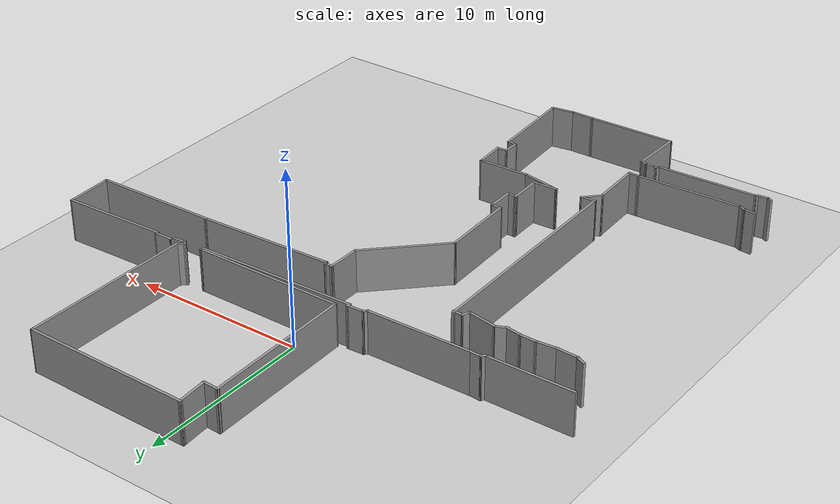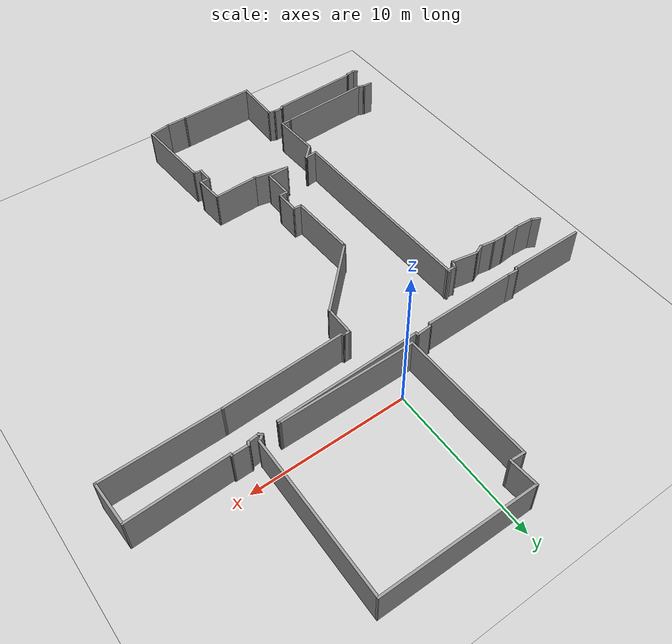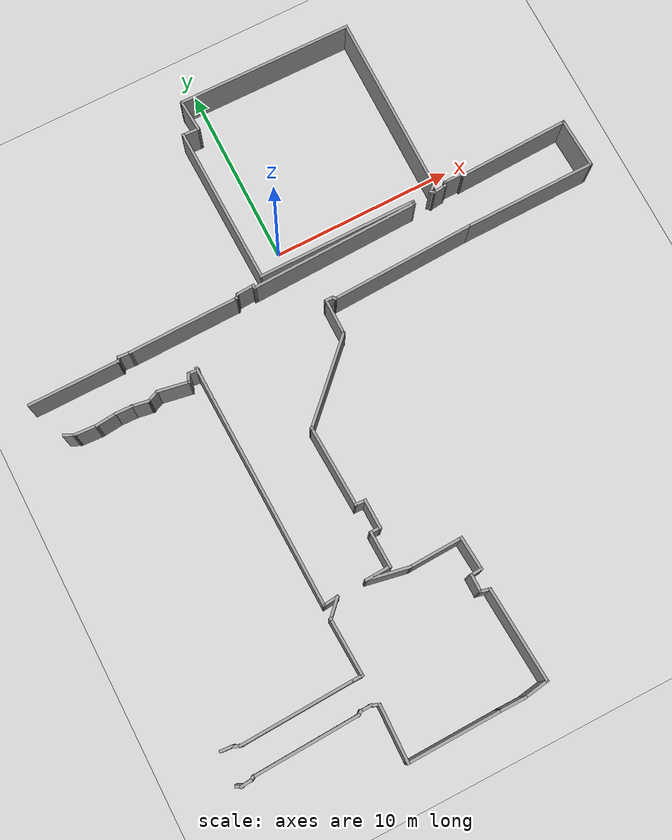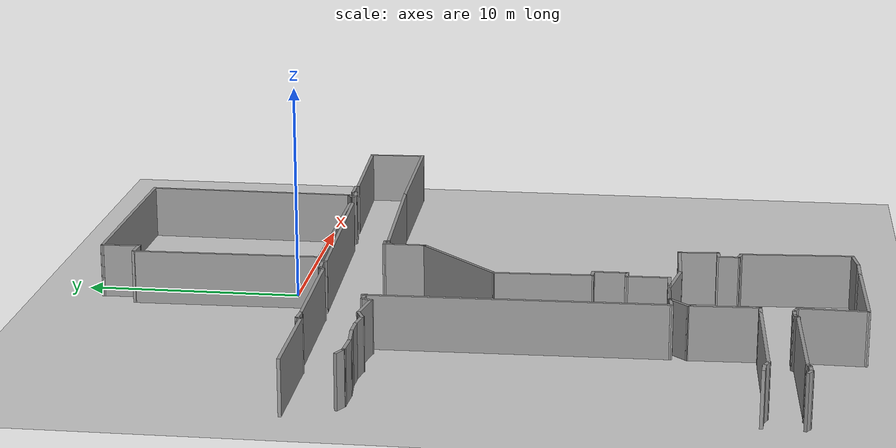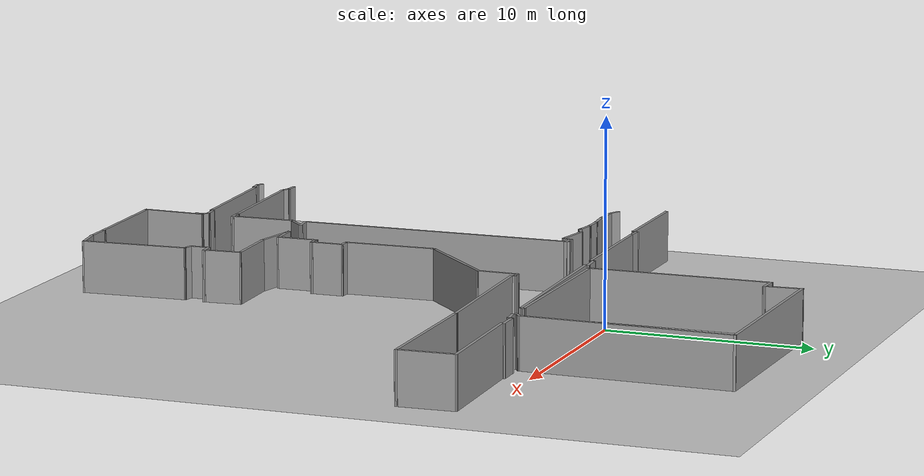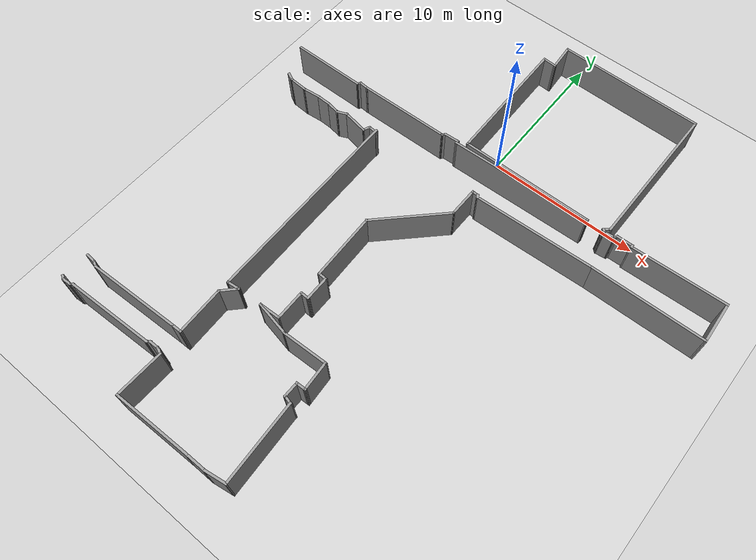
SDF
<sdf version="1.7">
 <world name="default">
  <model name="ground_plane">
   <static>1</static>
   <link name="link">
    <collision name="collision">
     <geometry><plane><normal>0 0 1</normal><size>100 100</size></plane></geometry>
     <surface>
      <contact><collide_bitmask>65535</collide_bitmask></contact>
      <friction><ode><mu>100</mu><mu2>50</mu2></ode></friction>
     </surface>
    </collision>
    <visual name="visual">
     <cast_shadows>0</cast_shadows>
     <geometry><plane><normal>0 0 1</normal><size>100 100</size></plane></geometry>
     <material>
      <script><uri>file://media/materials/scripts/gazebo.material</uri><name>Gazebo/Grey</name></script>
     </material>
    </visual>
   </link>
  </model>
  <model name="EnvDC_1stfloor">
   <pose>-14.254 -7.77363 0 0 0 -0.048671</pose>
   <link name="Wall_0">
    <collision name="Wall_0_Collision">
     <geometry><box><size>1 0.15 2.5</size></box></geometry>
     <pose>0 0 1.25 0 -0 0</pose>
    </collision>
    <visual name="Wall_0_Visual">
     <pose>0 0 1.25 0 -0 0</pose>
     <geometry><box><size>1 0.15 2.5</size></box></geometry>
     <material>
      <script><uri>file://media/materials/scripts/gazebo.material</uri><name>Gazebo/Grey</name></script>
      <ambient>1 1 1 1</ambient>
     </material>
     <meta><layer>0</layer></meta>
    </visual>
    <pose>12.1528 15.725 0 0 -0 0</pose>
   </link>
   <link name="Wall_1">
    <collision name="Wall_1_Collision">
     <geometry><box><size>1.87529 0.15 2.5</size></box></geometry>
     <pose>0 0 1.25 0 -0 0</pose>
    </collision>
    <visual name="Wall_1_Visual">
     <pose>0 0 1.25 0 -0 0</pose>
     <geometry><box><size>1.87529 0.15 2.5</size></box></geometry>
     <material>
      <script><uri>file://media/materials/scripts/gazebo.material</uri><name>Gazebo/Grey</name></script>
      <ambient>1 1 1 1</ambient>
     </material>
     <meta><layer>0</layer></meta>
    </visual>
    <pose>12.4735 16.5813 0 0 -0 1.69199</pose>
   </link>
   <link name="Wall_10">
    <collision name="Wall_10_Collision">
     <geometry><box><size>0.255426 0.15 2.5</size></box></geometry>
     <pose>0 0 1.25 0 -0 0</pose>
    </collision>
    <visual name="Wall_10_Visual">
     <pose>0 0 1.25 0 -0 0</pose>
     <geometry><box><size>0.255426 0.15 2.5</size></box></geometry>
     <material>
      <script><uri>file://media/materials/scripts/gazebo.material</uri><name>Gazebo/Grey</name></script>
      <ambient>1 1 1 1</ambient>
     </material>
     <meta><layer>0</layer></meta>
    </visual>
    <pose>24.0145 7.75655 0 0 -0 -1.35213</pose>
   </link>
   <link name="Wall_100">
    <collision name="Wall_100_Collision">
     <geometry><box><size>0.755861 0.15 2.5</size></box></geometry>
     <pose>0 0 1.25 0 -0 0</pose>
    </collision>
    <visual name="Wall_100_Visual">
     <pose>0 0 1.25 0 -0 0</pose>
     <geometry><box><size>0.755861 0.15 2.5</size></box></geometry>
     <material>
      <script><uri>file://media/materials/scripts/gazebo.material</uri><name>Gazebo/Grey</name></script>
      <ambient>1 1 1 1</ambient>
     </material>
     <meta><layer>0</layer></meta>
    </visual>
    <pose>8.31616 -13.2267 0 0 -0 -3.07717</pose>
   </link>
   <link name="Wall_101">
    <collision name="Wall_101_Collision">
     <geometry><box><size>6.22065 0.15 2.5</size></box></geometry>
     <pose>0 0 1.25 0 -0 0</pose>
    </collision>
    <visual name="Wall_101_Visual">
     <pose>0 0 1.25 0 -0 0</pose>
     <geometry><box><size>6.22065 0.15 2.5</size></box></geometry>
     <material>
      <script><uri>file://media/materials/scripts/gazebo.material</uri><name>Gazebo/Grey</name></script>
      <ambient>1 1 1 1</ambient>
     </material>
     <meta><layer>0</layer></meta>
    </visual>
    <pose>4.99084 -13.5192 0 0 -0 -3.05152</pose>
   </link>
   <link name="Wall_102">
    <collision name="Wall_102_Collision">
     <geometry><box><size>0.544913 0.15 2.5</size></box></geometry>
     <pose>0 0 1.25 0 -0 0</pose>
    </collision>
    <visual name="Wall_102_Visual">
     <pose>0 0 1.25 0 -0 0</pose>
     <geometry><box><size>0.544913 0.15 2.5</size></box></geometry>
     <material>
      <script><uri>file://media/materials/scripts/gazebo.material</uri><name>Gazebo/Grey</name></script>
      <ambient>1 1 1 1</ambient>
     </material>
     <meta><layer>0</layer></meta>
    </visual>
    <pose>1.78254 -13.724 0 0 -0 2.7886</pose>
   </link>
   <link name="Wall_103">
    <collision name="Wall_103_Collision">
     <geometry><box><size>0.715933 0.15 2.5</size></box></geometry>
     <pose>0 0 1.25 0 -0 0</pose>
    </collision>
    <visual name="Wall_103_Visual">
     <pose>0 0 1.25 0 -0 0</pose>
     <geometry><box><size>0.715933 0.15 2.5</size></box></geometry>
     <material>
      <script><uri>file://media/materials/scripts/gazebo.material</uri><name>Gazebo/Grey</name></script>
      <ambient>1 1 1 1</ambient>
     </material>
     <meta><layer>0</layer></meta>
    </visual>
    <pose>1.31446 -13.646 0 0 -0 3.10712</pose>
   </link>
   <link name="Wall_11">
    <collision name="Wall_11_Collision">
     <geometry><box><size>6.22574 0.15 2.5</size></box></geometry>
     <pose>0 0 1.25 0 -0 0</pose>
    </collision>
    <visual name="Wall_11_Visual">
     <pose>0 0 1.25 0 -0 0</pose>
     <geometry><box><size>6.22574 0.15 2.5</size></box></geometry>
     <material>
      <script><uri>file://media/materials/scripts/gazebo.material</uri><name>Gazebo/Grey</name></script>
      <ambient>1 1 1 1</ambient>
     </material>
     <meta><layer>0</layer></meta>
    </visual>
    <pose>27.0534 7.95666 0 0 -0 0.082907</pose>
   </link>
   <link name="Wall_12">
    <collision name="Wall_12_Collision">
     <geometry><box><size>2.83708 0.15 2.5</size></box></geometry>
     <pose>0 0 1.25 0 -0 0</pose>
    </collision>
    <visual name="Wall_12_Visual">
     <pose>0 0 1.25 0 -0 0</pose>
     <geometry><box><size>2.83708 0.15 2.5</size></box></geometry>
     <material>
      <script><uri>file://media/materials/scripts/gazebo.material</uri><name>Gazebo/Grey</name></script>
      <ambient>1 1 1 1</ambient>
     </material>
     <meta><layer>0</layer></meta>
    </visual>
    <pose>30.2037 6.87033 0 0 -0 -1.47917</pose>
   </link>
   <link name="Wall_14">
    <collision name="Wall_14_Collision">
     <geometry><box><size>7.39108 0.15 2.5</size></box></geometry>
     <pose>0 0 1.25 0 -0 0</pose>
    </collision>
    <visual name="Wall_14_Visual">
     <pose>0 0 1.25 0 -0 0</pose>
     <geometry><box><size>7.39108 0.15 2.5</size></box></geometry>
     <material>
      <script><uri>file://media/materials/scripts/gazebo.material</uri><name>Gazebo/Grey</name></script>
      <ambient>1 1 1 1</ambient>
     </material>
     <meta><layer>0</layer></meta>
    </visual>
    <pose>26.713 5.30981 0 0 -0 -3.08007</pose>
   </link>
   <link name="Wall_16">
    <collision name="Wall_16_Collision">
     <geometry><box><size>8.02507 0.15 2.5</size></box></geometry>
     <pose>0 0 1.25 0 -0 0</pose>
    </collision>
    <visual name="Wall_16_Visual">
     <pose>0 0 1.25 0 -0 0</pose>
     <geometry><box><size>8.02507 0.15 2.5</size></box></geometry>
     <material>
      <script><uri>file://media/materials/scripts/gazebo.material</uri><name>Gazebo/Grey</name></script>
      <ambient>1 1 1 1</ambient>
     </material>
     <meta><layer>0</layer></meta>
    </visual>
    <pose>19.1772 4.73871 0 0 -0 -3.05297</pose>
   </link>
   <link name="Wall_163">
    <collision name="Wall_163_Collision">
     <geometry><box><size>0.666637 0.15 2.5</size></box></geometry>
     <pose>0 0 1.25 0 -0 0</pose>
    </collision>
    <visual name="Wall_163_Visual">
     <pose>0 0 1.25 0 -0 0</pose>
     <geometry><box><size>0.666637 0.15 2.5</size></box></geometry>
     <material>
      <script><uri>file://media/materials/scripts/gazebo.material</uri><name>Gazebo/Grey</name></script>
      <ambient>1 1 1 1</ambient>
     </material>
     <meta><layer>0</layer></meta>
    </visual>
    <pose>0.283044 3.444 0 0 -0 -0.404892</pose>
   </link>
   <link name="Wall_164">
    <collision name="Wall_164_Collision">
     <geometry><box><size>1.32591 0.15 2.5</size></box></geometry>
     <pose>0 0 1.25 0 -0 0</pose>
    </collision>
    <visual name="Wall_164_Visual">
     <pose>0 0 1.25 0 -0 0</pose>
     <geometry><box><size>1.32591 0.15 2.5</size></box></geometry>
     <material>
      <script><uri>file://media/materials/scripts/gazebo.material</uri><name>Gazebo/Grey</name></script>
      <ambient>1 1 1 1</ambient>
     </material>
     <meta><layer>0</layer></meta>
    </visual>
    <pose>1.1084 3.33659 0 0 -0 -0.009615</pose>
   </link>
   <link name="Wall_165">
    <collision name="Wall_165_Collision">
     <geometry><box><size>1.25807 0.15 2.5</size></box></geometry>
     <pose>0 0 1.25 0 -0 0</pose>
    </collision>
    <visual name="Wall_165_Visual">
     <pose>0 0 1.25 0 -0 0</pose>
     <geometry><box><size>1.25807 0.15 2.5</size></box></geometry>
     <material>
      <script><uri>file://media/materials/scripts/gazebo.material</uri><name>Gazebo/Grey</name></script>
      <ambient>1 1 1 1</ambient>
     </material>
     <meta><layer>0</layer></meta>
    </visual>
    <pose>2.24469 3.41009 0 0 -0 0.14334</pose>
   </link>
   <link name="Wall_166">
    <collision name="Wall_166_Collision">
     <geometry><box><size>1.04384 0.15 2.5</size></box></geometry>
     <pose>0 0 1.25 0 -0 0</pose>
    </collision>
    <visual name="Wall_166_Visual">
     <pose>0 0 1.25 0 -0 0</pose>
     <geometry><box><size>1.04384 0.15 2.5</size></box></geometry>
     <material>
      <script><uri>file://media/materials/scripts/gazebo.material</uri><name>Gazebo/Grey</name></script>
      <ambient>1 1 1 1</ambient>
     </material>
     <meta><layer>0</layer></meta>
    </visual>
    <pose>3.23964 3.50054 0 0 -0 0.025311</pose>
   </link>
   <link name="Wall_167">
    <collision name="Wall_167_Collision">
     <geometry><box><size>1.02651 0.15 2.5</size></box></geometry>
     <pose>0 0 1.25 0 -0 0</pose>
    </collision>
    <visual name="Wall_167_Visual">
     <pose>0 0 1.25 0 -0 0</pose>
     <geometry><box><size>1.02651 0.15 2.5</size></box></geometry>
     <material>
      <script><uri>file://media/materials/scripts/gazebo.material</uri><name>Gazebo/Grey</name></script>
      <ambient>1 1 1 1</ambient>
     </material>
     <meta><layer>0</layer></meta>
    </visual>
    <pose>4.12153 3.46096 0 0 -0 -0.116355</pose>
   </link>
   <link name="Wall_168">
    <collision name="Wall_168_Collision">
     <geometry><box><size>0.777066 0.15 2.5</size></box></geometry>
     <pose>0 0 1.25 0 -0 0</pose>
    </collision>
    <visual name="Wall_168_Visual">
     <pose>0 0 1.25 0 -0 0</pose>
     <geometry><box><size>0.777066 0.15 2.5</size></box></geometry>
     <material>
      <script><uri>file://media/materials/scripts/gazebo.material</uri><name>Gazebo/Grey</name></script>
      <ambient>1 1 1 1</ambient>
     </material>
     <meta><layer>0</layer></meta>
    </visual>
    <pose>4.83948 3.54576 0 0 -0 0.44752</pose>
   </link>
   <link name="Wall_169">
    <collision name="Wall_169_Collision">
     <geometry><box><size>1.802 0.15 2.5</size></box></geometry>
     <pose>0 0 1.25 0 -0 0</pose>
    </collision>
    <visual name="Wall_169_Visual">
     <pose>0 0 1.25 0 -0 0</pose>
     <geometry><box><size>1.802 0.15 2.5</size></box></geometry>
     <material>
      <script><uri>file://media/materials/scripts/gazebo.material</uri><name>Gazebo/Grey</name></script>
      <ambient>1 1 1 1</ambient>
     </material>
     <meta><layer>0</layer></meta>
    </visual>
    <pose>5.94184 3.57968 0 0 -0 -0.123506</pose>
   </link>
   <link name="Wall_17">
    <collision name="Wall_17_Collision">
     <geometry><box><size>0.304061 0.15 2.5</size></box></geometry>
     <pose>0 0 1.25 0 -0 0</pose>
    </collision>
    <visual name="Wall_17_Visual">
     <pose>0 0 1.25 0 -0 0</pose>
     <geometry><box><size>0.304061 0.15 2.5</size></box></geometry>
     <material>
      <script><uri>file://media/materials/scripts/gazebo.material</uri><name>Gazebo/Grey</name></script>
      <ambient>1 1 1 1</ambient>
     </material>
     <meta><layer>0</layer></meta>
    </visual>
    <pose>15.2058 4.4494 0 0 -0 2.26553</pose>
   </link>
   <link name="Wall_170">
    <collision name="Wall_170_Collision">
     <geometry><box><size>0.582752 0.15 2.5</size></box></geometry>
     <pose>0 0 1.25 0 -0 0</pose>
    </collision>
    <visual name="Wall_170_Visual">
     <pose>0 0 1.25 0 -0 0</pose>
     <geometry><box><size>0.582752 0.15 2.5</size></box></geometry>
     <material>
      <script><uri>file://media/materials/scripts/gazebo.material</uri><name>Gazebo/Grey</name></script>
      <ambient>1 1 1 1</ambient>
     </material>
     <meta><layer>0</layer></meta>
    </visual>
    <pose>6.83504 3.68144 0 0 -0 1.22426</pose>
   </link>
   <link name="Wall_171">
    <collision name="Wall_171_Collision">
     <geometry><box><size>0.681877 0.15 2.5</size></box></geometry>
     <pose>0 0 1.25 0 -0 0</pose>
    </collision>
    <visual name="Wall_171_Visual">
     <pose>0 0 1.25 0 -0 0</pose>
     <geometry><box><size>0.681877 0.15 2.5</size></box></geometry>
     <material>
      <script><uri>file://media/materials/scripts/gazebo.material</uri><name>Gazebo/Grey</name></script>
      <ambient>1 1 1 1</ambient>
     </material>
     <meta><layer>0</layer></meta>
    </visual>
    <pose>7.17423 3.87364 0 0 -0 -0.042528</pose>
   </link>
   <link name="Wall_18">
    <collision name="Wall_18_Collision">
     <geometry><box><size>0.518444 0.15 2.5</size></box></geometry>
     <pose>0 0 1.25 0 -0 0</pose>
    </collision>
    <visual name="Wall_18_Visual">
     <pose>0 0 1.25 0 -0 0</pose>
     <geometry><box><size>0.518444 0.15 2.5</size></box></geometry>
     <material>
      <script><uri>file://media/materials/scripts/gazebo.material</uri><name>Gazebo/Grey</name></script>
      <ambient>1 1 1 1</ambient>
     </material>
     <meta><layer>0</layer></meta>
    </visual>
    <pose>14.9724 4.502 0 0 -0 -3.10589</pose>
   </link>
   <link name="Wall_19">
    <collision name="Wall_19_Collision">
     <geometry><box><size>2.05935 0.15 2.5</size></box></geometry>
     <pose>0 0 1.25 0 -0 0</pose>
    </collision>
    <visual name="Wall_19_Visual">
     <pose>0 0 1.25 0 -0 0</pose>
     <geometry><box><size>2.05935 0.15 2.5</size></box></geometry>
     <material>
      <script><uri>file://media/materials/scripts/gazebo.material</uri><name>Gazebo/Grey</name></script>
      <ambient>1 1 1 1</ambient>
     </material>
     <meta><layer>0</layer></meta>
    </visual>
    <pose>14.831 3.54203 0 0 -0 -1.526</pose>
   </link>
   <link name="Wall_2">
    <collision name="Wall_2_Collision">
     <geometry><box><size>9.80526 0.15 2.5</size></box></geometry>
     <pose>0 0 1.25 0 -0 0</pose>
    </collision>
    <visual name="Wall_2_Visual">
     <pose>0 0 1.25 0 -0 0</pose>
     <geometry><box><size>9.80526 0.15 2.5</size></box></geometry>
     <material>
      <script><uri>file://media/materials/scripts/gazebo.material</uri><name>Gazebo/Grey</name></script>
      <ambient>1 1 1 1</ambient>
     </material>
     <meta><layer>0</layer></meta>
    </visual>
    <pose>17.193 17.6228 0 0 -0 0.038364</pose>
   </link>
   <link name="Wall_21">
    <collision name="Wall_21_Collision">
     <geometry><box><size>5.30741 0.15 2.5</size></box></geometry>
     <pose>0 0 1.25 0 -0 0</pose>
    </collision>
    <visual name="Wall_21_Visual">
     <pose>0 0 1.25 0 -0 0</pose>
     <geometry><box><size>5.30741 0.15 2.5</size></box></geometry>
     <material>
      <script><uri>file://media/materials/scripts/gazebo.material</uri><name>Gazebo/Grey</name></script>
      <ambient>1 1 1 1</ambient>
     </material>
     <meta><layer>0</layer></meta>
    </visual>
    <pose>13.1327 0.686426 0 0 -0 -2.312</pose>
   </link>
   <link name="Wall_23">
    <collision name="Wall_23_Collision">
     <geometry><box><size>4.54645 0.15 2.5</size></box></geometry>
     <pose>0 0 1.25 0 -0 0</pose>
    </collision>
    <visual name="Wall_23_Visual">
     <pose>0 0 1.25 0 -0 0</pose>
     <geometry><box><size>4.54645 0.15 2.5</size></box></geometry>
     <material>
      <script><uri>file://media/materials/scripts/gazebo.material</uri><name>Gazebo/Grey</name></script>
      <ambient>1 1 1 1</ambient>
     </material>
     <meta><layer>0</layer></meta>
    </visual>
    <pose>11.5866 -3.40578 0 0 -0 -1.48199</pose>
   </link>
   <link name="Wall_24">
    <collision name="Wall_24_Collision">
     <geometry><box><size>0.66 0.15 2.5</size></box></geometry>
     <pose>0 0 1.25 0 -0 0</pose>
    </collision>
    <visual name="Wall_24_Visual">
     <pose>0 0 1.25 0 -0 0</pose>
     <geometry><box><size>0.66 0.15 2.5</size></box></geometry>
     <material>
      <script><uri>file://media/materials/scripts/gazebo.material</uri><name>Gazebo/Grey</name></script>
      <ambient>1 1 1 1</ambient>
     </material>
     <meta><layer>0</layer></meta>
    </visual>
    <pose>12.0366 -5.59578 0 0 -0 0</pose>
   </link>
   <link name="Wall_25">
    <collision name="Wall_25_Collision">
     <geometry><box><size>1.67329 0.15 2.5</size></box></geometry>
     <pose>0 0 1.25 0 -0 0</pose>
    </collision>
    <visual name="Wall_25_Visual">
     <pose>0 0 1.25 0 -0 0</pose>
     <geometry><box><size>1.67329 0.15 2.5</size></box></geometry>
     <material>
      <script><uri>file://media/materials/scripts/gazebo.material</uri><name>Gazebo/Grey</name></script>
      <ambient>1 1 1 1</ambient>
     </material>
     <meta><layer>0</layer></meta>
    </visual>
    <pose>12.3416 -6.35578 0 0 -0 -1.5051</pose>
   </link>
   <link name="Wall_26">
    <collision name="Wall_26_Collision">
     <geometry><box><size>0.6504 0.15 2.5</size></box></geometry>
     <pose>0 0 1.25 0 -0 0</pose>
    </collision>
    <visual name="Wall_26_Visual">
     <pose>0 0 1.25 0 -0 0</pose>
     <geometry><box><size>0.6504 0.15 2.5</size></box></geometry>
     <material>
      <script><uri>file://media/materials/scripts/gazebo.material</uri><name>Gazebo/Grey</name></script>
      <ambient>1 1 1 1</ambient>
     </material>
     <meta><layer>0</layer></meta>
    </visual>
    <pose>12.1416 -7.12578 0 0 -0 -3.10161</pose>
   </link>
   <link name="Wall_27">
    <collision name="Wall_27_Collision">
     <geometry><box><size>2.05444 0.15 2.5</size></box></geometry>
     <pose>0 0 1.25 0 -0 0</pose>
    </collision>
    <visual name="Wall_27_Visual">
     <pose>0 0 1.25 0 -0 0</pose>
     <geometry><box><size>2.05444 0.15 2.5</size></box></geometry>
     <material>
      <script><uri>file://media/materials/scripts/gazebo.material</uri><name>Gazebo/Grey</name></script>
      <ambient>1 1 1 1</ambient>
     </material>
     <meta><layer>0</layer></meta>
    </visual>
    <pose>11.9616 -8.08578 0 0 -0 -1.49724</pose>
   </link>
   <link name="Wall_28">
    <collision name="Wall_28_Collision">
     <geometry><box><size>1.4854 0.15 2.5</size></box></geometry>
     <pose>0 0 1.25 0 -0 0</pose>
    </collision>
    <visual name="Wall_28_Visual">
     <pose>0 0 1.25 0 -0 0</pose>
     <geometry><box><size>1.4854 0.15 2.5</size></box></geometry>
     <material>
      <script><uri>file://media/materials/scripts/gazebo.material</uri><name>Gazebo/Grey</name></script>
      <ambient>1 1 1 1</ambient>
     </material>
     <meta><layer>0</layer></meta>
    </visual>
    <pose>11.3666 -9.09578 0 0 -0 -3.05161</pose>
   </link>
   <link name="Wall_3">
    <collision name="Wall_3_Collision">
     <geometry><box><size>10.0993 0.15 2.5</size></box></geometry>
     <pose>0 0 1.25 0 -0 0</pose>
    </collision>
    <visual name="Wall_3_Visual">
     <pose>0 0 1.25 0 -0 0</pose>
     <geometry><box><size>10.0993 0.15 2.5</size></box></geometry>
     <material>
      <script><uri>file://media/materials/scripts/gazebo.material</uri><name>Gazebo/Grey</name></script>
      <ambient>1 1 1 1</ambient>
     </material>
     <meta><layer>0</layer></meta>
    </visual>
    <pose>22.2254 12.8376 0 0 -0 -1.52887</pose>
   </link>
   <link name="Wall_30">
    <collision name="Wall_30_Collision">
     <geometry><box><size>2.38164 0.15 2.5</size></box></geometry>
     <pose>0 0 1.25 0 -0 0</pose>
    </collision>
    <visual name="Wall_30_Visual">
     <pose>0 0 1.25 0 -0 0</pose>
     <geometry><box><size>2.38164 0.15 2.5</size></box></geometry>
     <material>
      <script><uri>file://media/materials/scripts/gazebo.material</uri><name>Gazebo/Grey</name></script>
      <ambient>1 1 1 1</ambient>
     </material>
     <meta><layer>0</layer></meta>
    </visual>
    <pose>11.8066 -9.31078 0 0 -0 -0.139362</pose>
   </link>
   <link name="Wall_31">
    <collision name="Wall_31_Collision">
     <geometry><box><size>3.05079 0.15 2.5</size></box></geometry>
     <pose>0 0 1.25 0 -0 0</pose>
    </collision>
    <visual name="Wall_31_Visual">
     <pose>0 0 1.25 0 -0 0</pose>
     <geometry><box><size>3.05079 0.15 2.5</size></box></geometry>
     <material>
      <script><uri>file://media/materials/scripts/gazebo.material</uri><name>Gazebo/Grey</name></script>
      <ambient>1 1 1 1</ambient>
     </material>
     <meta><layer>0</layer></meta>
    </visual>
    <pose>14.3566 -9.34078 0 0 -0 0.08629</pose>
   </link>
   <link name="Wall_32">
    <collision name="Wall_32_Collision">
     <geometry><box><size>1.93362 0.15 2.5</size></box></geometry>
     <pose>0 0 1.25 0 -0 0</pose>
    </collision>
    <visual name="Wall_32_Visual">
     <pose>0 0 1.25 0 -0 0</pose>
     <geometry><box><size>1.93362 0.15 2.5</size></box></geometry>
     <material>
      <script><uri>file://media/materials/scripts/gazebo.material</uri><name>Gazebo/Grey</name></script>
      <ambient>1 1 1 1</ambient>
     </material>
     <meta><layer>0</layer></meta>
    </visual>
    <pose>15.9116 -10.1008 0 0 -0 -1.44714</pose>
   </link>
   <link name="Wall_33">
    <collision name="Wall_33_Collision">
     <geometry><box><size>0.712228 0.15 2.5</size></box></geometry>
     <pose>0 0 1.25 0 -0 0</pose>
    </collision>
    <visual name="Wall_33_Visual">
     <pose>0 0 1.25 0 -0 0</pose>
     <geometry><box><size>0.712228 0.15 2.5</size></box></geometry>
     <material>
      <script><uri>file://media/materials/scripts/gazebo.material</uri><name>Gazebo/Grey</name></script>
      <ambient>1 1 1 1</ambient>
     </material>
     <meta><layer>0</layer></meta>
    </visual>
    <pose>15.7416 -11.0108 0 0 -0 -3.05254</pose>
   </link>
   <link name="Wall_34">
    <collision name="Wall_34_Collision">
     <geometry><box><size>1.06137 0.15 2.5</size></box></geometry>
     <pose>0 0 1.25 0 -0 0</pose>
    </collision>
    <visual name="Wall_34_Visual">
     <pose>0 0 1.25 0 -0 0</pose>
     <geometry><box><size>1.06137 0.15 2.5</size></box></geometry>
     <material>
      <script><uri>file://media/materials/scripts/gazebo.material</uri><name>Gazebo/Grey</name></script>
      <ambient>1 1 1 1</ambient>
     </material>
     <meta><layer>0</layer></meta>
    </visual>
    <pose>15.4866 -11.4908 0 0 -0 -1.51591</pose>
   </link>
   <link name="Wall_35">
    <collision name="Wall_35_Collision">
     <geometry><box><size>0.638365 0.15 2.5</size></box></geometry>
     <pose>0 0 1.25 0 -0 0</pose>
    </collision>
    <visual name="Wall_35_Visual">
     <pose>0 0 1.25 0 -0 0</pose>
     <geometry><box><size>0.638365 0.15 2.5</size></box></geometry>
     <material>
      <script><uri>file://media/materials/scripts/gazebo.material</uri><name>Gazebo/Grey</name></script>
      <ambient>1 1 1 1</ambient>
     </material>
     <meta><layer>0</layer></meta>
    </visual>
    <pose>15.7516 -11.9908 0 0 -0 -0.185348</pose>
   </link>
   <link name="Wall_37">
    <collision name="Wall_37_Collision">
     <geometry><box><size>5.242 0.15 2.5</size></box></geometry>
     <pose>0 0 1.25 0 -0 0</pose>
    </collision>
    <visual name="Wall_37_Visual">
     <pose>0 0 1.25 0 -0 0</pose>
     <geometry><box><size>5.242 0.15 2.5</size></box></geometry>
     <material>
      <script><uri>file://media/materials/scripts/gazebo.material</uri><name>Gazebo/Grey</name></script>
      <ambient>1 1 1 1</ambient>
     </material>
     <meta><layer>0</layer></meta>
    </visual>
    <pose>16.2766 -14.5658 0 0 -0 -1.45862</pose>
   </link>
   <link name="Wall_38">
    <collision name="Wall_38_Collision">
     <geometry><box><size>1.45817 0.15 2.5</size></box></geometry>
     <pose>0 0 1.25 0 -0 0</pose>
    </collision>
    <visual name="Wall_38_Visual">
     <pose>0 0 1.25 0 -0 0</pose>
     <geometry><box><size>1.45817 0.15 2.5</size></box></geometry>
     <material>
      <script><uri>file://media/materials/scripts/gazebo.material</uri><name>Gazebo/Grey</name></script>
      <ambient>1 1 1 1</ambient>
     </material>
     <meta><layer>0</layer></meta>
    </visual>
    <pose>15.9216 -17.2308 0 0 -0 -2.9337</pose>
   </link>
   <link name="Wall_39">
    <collision name="Wall_39_Collision">
     <geometry><box><size>1.46137 0.15 2.5</size></box></geometry>
     <pose>0 0 1.25 0 -0 0</pose>
    </collision>
    <visual name="Wall_39_Visual">
     <pose>0 0 1.25 0 -0 0</pose>
     <geometry><box><size>1.46137 0.15 2.5</size></box></geometry>
     <material>
      <script><uri>file://media/materials/scripts/gazebo.material</uri><name>Gazebo/Grey</name></script>
      <ambient>1 1 1 1</ambient>
     </material>
     <meta><layer>0</layer></meta>
    </visual>
    <pose>14.6266 -17.4008 0 0 -0 -3.08821</pose>
   </link>
   <link name="Wall_40">
    <collision name="Wall_40_Collision">
     <geometry><box><size>5.25343 0.15 2.5</size></box></geometry>
     <pose>0 0 1.25 0 -0 0</pose>
    </collision>
    <visual name="Wall_40_Visual">
     <pose>0 0 1.25 0 -0 0</pose>
     <geometry><box><size>5.25343 0.15 2.5</size></box></geometry>
     <material>
      <script><uri>file://media/materials/scripts/gazebo.material</uri><name>Gazebo/Grey</name></script>
      <ambient>1 1 1 1</ambient>
     </material>
     <meta><layer>0</layer></meta>
    </visual>
    <pose>11.4266 -17.6208 0 0 -0 -3.06903</pose>
   </link>
   <link name="Wall_41">
    <collision name="Wall_41_Collision">
     <geometry><box><size>3.17106 0.15 2.5</size></box></geometry>
     <pose>0 0 1.25 0 -0 0</pose>
    </collision>
    <visual name="Wall_41_Visual">
     <pose>0 0 1.25 0 -0 0</pose>
     <geometry><box><size>3.17106 0.15 2.5</size></box></geometry>
     <material>
      <script><uri>file://media/materials/scripts/gazebo.material</uri><name>Gazebo/Grey</name></script>
      <ambient>1 1 1 1</ambient>
     </material>
     <meta><layer>0</layer></meta>
    </visual>
    <pose>8.84159 -16.2958 0 0 -0 1.59728</pose>
   </link>
   <link name="Wall_42">
    <collision name="Wall_42_Collision">
     <geometry><box><size>0.542173 0.15 2.5</size></box></geometry>
     <pose>0 0 1.25 0 -0 0</pose>
    </collision>
    <visual name="Wall_42_Visual">
     <pose>0 0 1.25 0 -0 0</pose>
     <geometry><box><size>0.542173 0.15 2.5</size></box></geometry>
     <material>
      <script><uri>file://media/materials/scripts/gazebo.material</uri><name>Gazebo/Grey</name></script>
      <ambient>1 1 1 1</ambient>
     </material>
     <meta><layer>0</layer></meta>
    </visual>
    <pose>8.61659 -14.7208 0 0 -0 2.80371</pose>
   </link>
   <link name="Wall_43">
    <collision name="Wall_43_Collision">
     <geometry><box><size>0.731378 0.15 2.5</size></box></geometry>
     <pose>0 0 1.25 0 -0 0</pose>
    </collision>
    <visual name="Wall_43_Visual">
     <pose>0 0 1.25 0 -0 0</pose>
     <geometry><box><size>0.731378 0.15 2.5</size></box></geometry>
     <material>
      <script><uri>file://media/materials/scripts/gazebo.material</uri><name>Gazebo/Grey</name></script>
      <ambient>1 1 1 1</ambient>
     </material>
     <meta><layer>0</layer></meta>
    </visual>
    <pose>8.14159 -14.6758 0 0 -0 -3.07274</pose>
   </link>
   <link name="Wall_44">
    <collision name="Wall_44_Collision">
     <geometry><box><size>0.356155 0.15 2.5</size></box></geometry>
     <pose>0 0 1.25 0 -0 0</pose>
    </collision>
    <visual name="Wall_44_Visual">
     <pose>0 0 1.25 0 -0 0</pose>
     <geometry><box><size>0.356155 0.15 2.5</size></box></geometry>
     <material>
      <script><uri>file://media/materials/scripts/gazebo.material</uri><name>Gazebo/Grey</name></script>
      <ambient>1 1 1 1</ambient>
     </material>
     <meta><layer>0</layer></meta>
    </visual>
    <pose>7.77159 -14.7608 0 0 -0 -2.45928</pose>
   </link>
   <link name="Wall_45">
    <collision name="Wall_45_Collision">
     <geometry><box><size>5.93433 0.15 2.5</size></box></geometry>
     <pose>0 0 1.25 0 -0 0</pose>
    </collision>
    <visual name="Wall_45_Visual">
     <pose>0 0 1.25 0 -0 0</pose>
     <geometry><box><size>5.93433 0.15 2.5</size></box></geometry>
     <material>
      <script><uri>file://media/materials/scripts/gazebo.material</uri><name>Gazebo/Grey</name></script>
      <ambient>1 1 1 1</ambient>
     </material>
     <meta><layer>0</layer></meta>
    </visual>
    <pose>4.81159 -15.0908 0 0 -0 -3.04984</pose>
   </link>
   <link name="Wall_46">
    <collision name="Wall_46_Collision">
     <geometry><box><size>0.322047 0.15 2.5</size></box></geometry>
     <pose>0 0 1.25 0 -0 0</pose>
    </collision>
    <visual name="Wall_46_Visual">
     <pose>0 0 1.25 0 -0 0</pose>
     <geometry><box><size>0.322047 0.15 2.5</size></box></geometry>
     <material>
      <script><uri>file://media/materials/scripts/gazebo.material</uri><name>Gazebo/Grey</name></script>
      <ambient>1 1 1 1</ambient>
     </material>
     <meta><layer>0</layer></meta>
    </visual>
    <pose>1.86159 -15.4058 0 0 -0 -2.52134</pose>
   </link>
   <link name="Wall_47">
    <collision name="Wall_47_Collision">
     <geometry><box><size>0.684603 0.15 2.5</size></box></geometry>
     <pose>0 0 1.25 0 -0 0</pose>
    </collision>
    <visual name="Wall_47_Visual">
     <pose>0 0 1.25 0 -0 0</pose>
     <geometry><box><size>0.684603 0.15 2.5</size></box></geometry>
     <material>
      <script><uri>file://media/materials/scripts/gazebo.material</uri><name>Gazebo/Grey</name></script>
      <ambient>1 1 1 1</ambient>
     </material>
     <meta><layer>0</layer></meta>
    </visual>
    <pose>1.52659 -15.4908 0 0 -0 -3.01028</pose>
   </link>
   <link name="Wall_48">
    <collision name="Wall_48_Collision">
     <geometry><box><size>0.395967 0.15 2.5</size></box></geometry>
     <pose>0 0 1.25 0 -0 0</pose>
    </collision>
    <visual name="Wall_48_Visual">
     <pose>0 0 1.25 0 -0 0</pose>
     <geometry><box><size>0.395967 0.15 2.5</size></box></geometry>
     <material>
      <script><uri>file://media/materials/scripts/gazebo.material</uri><name>Gazebo/Grey</name></script>
      <ambient>1 1 1 1</ambient>
     </material>
     <meta><layer>0</layer></meta>
    </visual>
    <pose>1.15159 -15.4708 0 0 -0 2.67794</pose>
   </link>
   <link name="Wall_5">
    <collision name="Wall_5_Collision">
     <geometry><box><size>0.554214 0.15 2.5</size></box></geometry>
     <pose>0 0 1.25 0 -0 0</pose>
    </collision>
    <visual name="Wall_5_Visual">
     <pose>0 0 1.25 0 -0 0</pose>
     <geometry><box><size>0.554214 0.15 2.5</size></box></geometry>
     <material>
      <script><uri>file://media/materials/scripts/gazebo.material</uri><name>Gazebo/Grey</name></script>
      <ambient>1 1 1 1</ambient>
     </material>
     <meta><layer>0</layer></meta>
    </visual>
    <pose>22.2837 7.7319 0 0 -0 -2.40792</pose>
   </link>
   <link name="Wall_6">
    <collision name="Wall_6_Collision">
     <geometry><box><size>0.336675 0.15 2.5</size></box></geometry>
     <pose>0 0 1.25 0 -0 0</pose>
    </collision>
    <visual name="Wall_6_Visual">
     <pose>0 0 1.25 0 -0 0</pose>
     <geometry><box><size>0.336675 0.15 2.5</size></box></geometry>
     <material>
      <script><uri>file://media/materials/scripts/gazebo.material</uri><name>Gazebo/Grey</name></script>
      <ambient>1 1 1 1</ambient>
     </material>
     <meta><layer>0</layer></meta>
    </visual>
    <pose>22.2049 7.53642 0 0 -0 -0.69866</pose>
   </link>
   <link name="Wall_7">
    <collision name="Wall_7_Collision">
     <geometry><box><size>0.806123 0.15 2.5</size></box></geometry>
     <pose>0 0 1.25 0 -0 0</pose>
    </collision>
    <visual name="Wall_7_Visual">
     <pose>0 0 1.25 0 -0 0</pose>
     <geometry><box><size>0.806123 0.15 2.5</size></box></geometry>
     <material>
      <script><uri>file://media/materials/scripts/gazebo.material</uri><name>Gazebo/Grey</name></script>
      <ambient>1 1 1 1</ambient>
     </material>
     <meta><layer>0</layer></meta>
    </visual>
    <pose>22.5994 7.53071 0 0 -0 0.166583</pose>
   </link>
   <link name="Wall_77">
    <collision name="Wall_77_Collision">
     <geometry><box><size>5.0606 0.15 2.5</size></box></geometry>
     <pose>0 0 1.25 0 -0 0</pose>
    </collision>
    <visual name="Wall_77_Visual">
     <pose>0 0 1.25 0 -0 0</pose>
     <geometry><box><size>5.0606 0.15 2.5</size></box></geometry>
     <material>
      <script><uri>file://media/materials/scripts/gazebo.material</uri><name>Gazebo/Grey</name></script>
      <ambient>1 1 1 1</ambient>
     </material>
     <meta><layer>0</layer></meta>
    </visual>
    <pose>1.48353 5.80731 0 0 -0 0.050489</pose>
   </link>
   <link name="Wall_78">
    <collision name="Wall_78_Collision">
     <geometry><box><size>0.367087 0.15 2.5</size></box></geometry>
     <pose>0 0 1.25 0 -0 0</pose>
    </collision>
    <visual name="Wall_78_Visual">
     <pose>0 0 1.25 0 -0 0</pose>
     <geometry><box><size>0.367087 0.15 2.5</size></box></geometry>
     <material>
      <script><uri>file://media/materials/scripts/gazebo.material</uri><name>Gazebo/Grey</name></script>
      <ambient>1 1 1 1</ambient>
     </material>
     <meta><layer>0</layer></meta>
    </visual>
    <pose>3.9944 6.02253 0 0 -0 0.999459</pose>
   </link>
   <link name="Wall_79">
    <collision name="Wall_79_Collision">
     <geometry><box><size>0.763182 0.15 2.5</size></box></geometry>
     <pose>0 0 1.25 0 -0 0</pose>
    </collision>
    <visual name="Wall_79_Visual">
     <pose>0 0 1.25 0 -0 0</pose>
     <geometry><box><size>0.763182 0.15 2.5</size></box></geometry>
     <material>
      <script><uri>file://media/materials/scripts/gazebo.material</uri><name>Gazebo/Grey</name></script>
      <ambient>1 1 1 1</ambient>
     </material>
     <meta><layer>0</layer></meta>
    </visual>
    <pose>4.35961 6.10731 0 0 -0 -0.021273</pose>
   </link>
   <link name="Wall_8">
    <collision name="Wall_8_Collision">
     <geometry><box><size>0.329443 0.15 2.5</size></box></geometry>
     <pose>0 0 1.25 0 -0 0</pose>
    </collision>
    <visual name="Wall_8_Visual">
     <pose>0 0 1.25 0 -0 0</pose>
     <geometry><box><size>0.329443 0.15 2.5</size></box></geometry>
     <material>
      <script><uri>file://media/materials/scripts/gazebo.material</uri><name>Gazebo/Grey</name></script>
      <ambient>1 1 1 1</ambient>
     </material>
     <meta><layer>0</layer></meta>
    </visual>
    <pose>22.9682 7.66221 0 0 -0 1.03584</pose>
   </link>
   <link name="Wall_80">
    <collision name="Wall_80_Collision">
     <geometry><box><size>6.17988 0.15 2.5</size></box></geometry>
     <pose>0 0 1.25 0 -0 0</pose>
    </collision>
    <visual name="Wall_80_Visual">
     <pose>0 0 1.25 0 -0 0</pose>
     <geometry><box><size>6.17988 0.15 2.5</size></box></geometry>
     <material>
      <script><uri>file://media/materials/scripts/gazebo.material</uri><name>Gazebo/Grey</name></script>
      <ambient>1 1 1 1</ambient>
     </material>
     <meta><layer>0</layer></meta>
    </visual>
    <pose>7.67486 6.29432 0 0 -0 0.064236</pose>
   </link>
   <link name="Wall_86">
    <collision name="Wall_86_Collision">
     <geometry><box><size>0.36966 0.15 2.5</size></box></geometry>
     <pose>0 0 1.25 0 -0 0</pose>
    </collision>
    <visual name="Wall_86_Visual">
     <pose>0 0 1.25 0 -0 0</pose>
     <geometry><box><size>0.36966 0.15 2.5</size></box></geometry>
     <material>
      <script><uri>file://media/materials/scripts/gazebo.material</uri><name>Gazebo/Grey</name></script>
      <ambient>1 1 1 1</ambient>
     </material>
     <meta><layer>0</layer></meta>
    </visual>
    <pose>10.7522 6.57362 0 0 -0 0.896055</pose>
   </link>
   <link name="Wall_87">
    <collision name="Wall_87_Collision">
     <geometry><box><size>1.0725 0.15 2.5</size></box></geometry>
     <pose>0 0 1.25 0 -0 0</pose>
    </collision>
    <visual name="Wall_87_Visual">
     <pose>0 0 1.25 0 -0 0</pose>
     <geometry><box><size>1.0725 0.15 2.5</size></box></geometry>
     <material>
      <script><uri>file://media/materials/scripts/gazebo.material</uri><name>Gazebo/Grey</name></script>
      <ambient>1 1 1 1</ambient>
     </material>
     <meta><layer>0</layer></meta>
    </visual>
    <pose>11.2796 6.70655 0 0 -0 0.102444</pose>
   </link>
   <link name="Wall_88">
    <collision name="Wall_88_Collision">
     <geometry><box><size>0.287489 0.15 2.5</size></box></geometry>
     <pose>0 0 1.25 0 -0 0</pose>
    </collision>
    <visual name="Wall_88_Visual">
     <pose>0 0 1.25 0 -0 0</pose>
     <geometry><box><size>0.287489 0.15 2.5</size></box></geometry>
     <material>
      <script><uri>file://media/materials/scripts/gazebo.material</uri><name>Gazebo/Grey</name></script>
      <ambient>1 1 1 1</ambient>
     </material>
     <meta><layer>0</layer></meta>
    </visual>
    <pose>11.7428 6.68511 0 0 -0 -1.50838</pose>
   </link>
   <link name="Wall_89">
    <collision name="Wall_89_Collision">
     <geometry><box><size>9.47524 0.15 2.5</size></box></geometry>
     <pose>0 0 1.25 0 -0 0</pose>
    </collision>
    <visual name="Wall_89_Visual">
     <pose>0 0 1.25 0 -0 0</pose>
     <geometry><box><size>9.47524 0.15 2.5</size></box></geometry>
     <material>
      <script><uri>file://media/materials/scripts/gazebo.material</uri><name>Gazebo/Grey</name></script>
      <ambient>1 1 1 1</ambient>
     </material>
     <meta><layer>0</layer></meta>
    </visual>
    <pose>16.3954 6.98099 0 0 -0 0.078253</pose>
   </link>
   <link name="Wall_9">
    <collision name="Wall_9_Collision">
     <geometry><box><size>1.14151 0.15 2.5</size></box></geometry>
     <pose>0 0 1.25 0 -0 0</pose>
    </collision>
    <visual name="Wall_9_Visual">
     <pose>0 0 1.25 0 -0 0</pose>
     <geometry><box><size>1.14151 0.15 2.5</size></box></geometry>
     <material>
      <script><uri>file://media/materials/scripts/gazebo.material</uri><name>Gazebo/Grey</name></script>
      <ambient>1 1 1 1</ambient>
     </material>
     <meta><layer>0</layer></meta>
    </visual>
    <pose>23.5085 7.7737 0 0 -0 0.069253</pose>
   </link>
   <link name="Wall_90">
    <collision name="Wall_90_Collision">
     <geometry><box><size>0.27893 0.15 2.5</size></box></geometry>
     <pose>0 0 1.25 0 -0 0</pose>
    </collision>
    <visual name="Wall_90_Visual">
     <pose>0 0 1.25 0 -0 0</pose>
     <geometry><box><size>0.27893 0.15 2.5</size></box></geometry>
     <material>
      <script><uri>file://media/materials/scripts/gazebo.material</uri><name>Gazebo/Grey</name></script>
      <ambient>1 1 1 1</ambient>
     </material>
     <meta><layer>0</layer></meta>
    </visual>
    <pose>21.048 7.40981 0 0 -0 1.50423</pose>
   </link>
   <link name="Wall_91">
    <collision name="Wall_91_Collision">
     <geometry><box><size>8.90019 0.15 2.5</size></box></geometry>
     <pose>0 0 1.25 0 -0 0</pose>
    </collision>
    <visual name="Wall_91_Visual">
     <pose>0 0 1.25 0 -0 0</pose>
     <geometry><box><size>8.90019 0.15 2.5</size></box></geometry>
     <material>
      <script><uri>file://media/materials/scripts/gazebo.material</uri><name>Gazebo/Grey</name></script>
      <ambient>1 1 1 1</ambient>
     </material>
     <meta><layer>0</layer></meta>
    </visual>
    <pose>16.6827 7.25543 0 0 -0 -3.09158</pose>
   </link>
   <link name="Wall_93">
    <collision name="Wall_93_Collision">
     <geometry><box><size>8.86046 0.15 2.5</size></box></geometry>
     <pose>0 0 1.25 0 -0 0</pose>
    </collision>
    <visual name="Wall_93_Visual">
     <pose>0 0 1.25 0 -0 0</pose>
     <geometry><box><size>8.86046 0.15 2.5</size></box></geometry>
     <material>
      <script><uri>file://media/materials/scripts/gazebo.material</uri><name>Gazebo/Grey</name></script>
      <ambient>1 1 1 1</ambient>
     </material>
     <meta><layer>0</layer></meta>
    </visual>
    <pose>12.019 11.382 0 0 -0 1.63837</pose>
   </link>
   <link name="Wall_96">
    <collision name="Wall_96_Collision">
     <geometry><box><size>13.5815 0.15 2.5</size></box></geometry>
     <pose>0 0 1.25 0 -0 0</pose>
    </collision>
    <visual name="Wall_96_Visual">
     <pose>0 0 1.25 0 -0 0</pose>
     <geometry><box><size>13.5815 0.15 2.5</size></box></geometry>
     <material>
      <script><uri>file://media/materials/scripts/gazebo.material</uri><name>Gazebo/Grey</name></script>
      <ambient>1 1 1 1</ambient>
     </material>
     <meta><layer>0</layer></meta>
    </visual>
    <pose>7.85783 -2.72414 0 0 -0 -1.50104</pose>
   </link>
   <link name="Wall_97">
    <collision name="Wall_97_Collision">
     <geometry><box><size>0.91958 0.15 2.5</size></box></geometry>
     <pose>0 0 1.25 0 -0 0</pose>
    </collision>
    <visual name="Wall_97_Visual">
     <pose>0 0 1.25 0 -0 0</pose>
     <geometry><box><size>0.91958 0.15 2.5</size></box></geometry>
     <material>
      <script><uri>file://media/materials/scripts/gazebo.material</uri><name>Gazebo/Grey</name></script>
      <ambient>1 1 1 1</ambient>
     </material>
     <meta><layer>0</layer></meta>
    </visual>
    <pose>8.70623 -9.36503 0 0 -0 0.152649</pose>
   </link>
   <link name="Wall_98">
    <collision name="Wall_98_Collision">
     <geometry><box><size>1.26919 0.15 2.5</size></box></geometry>
     <pose>0 0 1.25 0 -0 0</pose>
    </collision>
    <visual name="Wall_98_Visual">
     <pose>0 0 1.25 0 -0 0</pose>
     <geometry><box><size>1.26919 0.15 2.5</size></box></geometry>
     <material>
      <script><uri>file://media/materials/scripts/gazebo.material</uri><name>Gazebo/Grey</name></script>
      <ambient>1 1 1 1</ambient>
     </material>
     <meta><layer>0</layer></meta>
    </visual>
    <pose>8.71598 -9.72584 0 0 -0 -2.29454</pose>
   </link>
   <link name="Wall_99">
    <collision name="Wall_99_Collision">
     <geometry><box><size>3.22418 0.15 2.5</size></box></geometry>
     <pose>0 0 1.25 0 -0 0</pose>
    </collision>
    <visual name="Wall_99_Visual">
     <pose>0 0 1.25 0 -0 0</pose>
     <geometry><box><size>3.22418 0.15 2.5</size></box></geometry>
     <material>
      <script><uri>file://media/materials/scripts/gazebo.material</uri><name>Gazebo/Grey</name></script>
      <ambient>1 1 1 1</ambient>
     </material>
     <meta><layer>0</layer></meta>
    </visual>
    <pose>8.48194 -11.6762 0 0 -0 -1.48186</pose>
   </link>
   <static>1</static>
  </model>
 </world>
</sdf>
